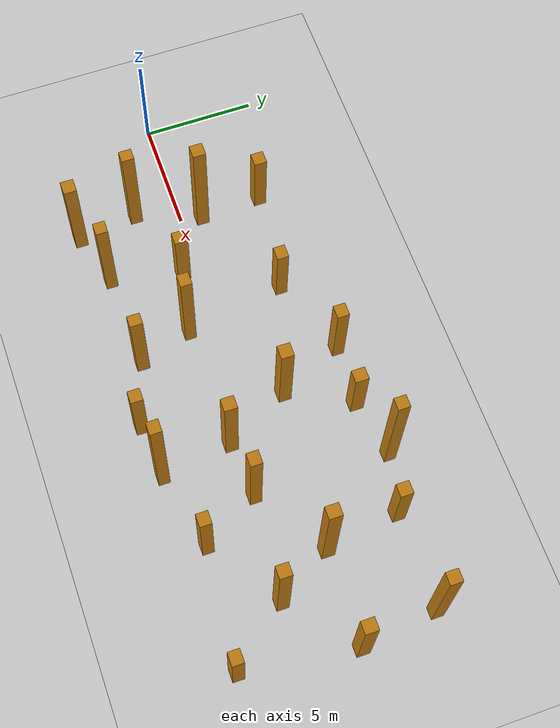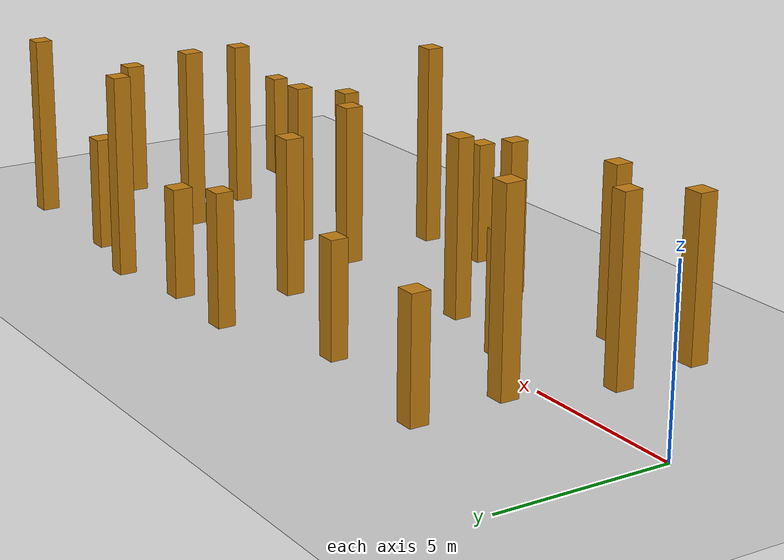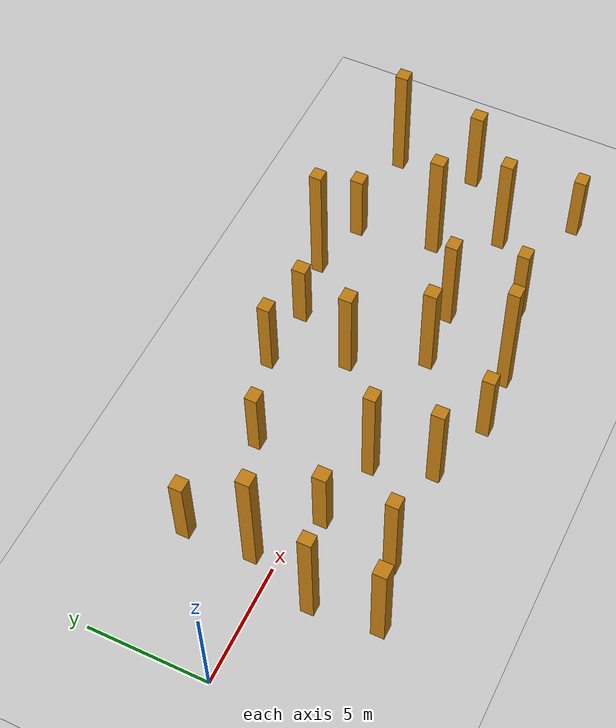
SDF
<sdf version="1.7">
 <world name="default">
  <light name="sun" type="directional">
   <pose>0 0 10 0 -0 0</pose>
   <diffuse>0.8 0.8 0.8 1</diffuse>
   <specular>0.2 0.2 0.2 1</specular>
   <attenuation>
    <range>1000</range>
    <constant>0.9</constant>
    <linear>0.01</linear>
    <quadratic>0.001</quadratic>
   </attenuation>
   <direction>-0.5 0.1 -0.9</direction>
   <spot><inner_angle>0</inner_angle><outer_angle>0</outer_angle><falloff>0</falloff></spot>
  </light>
  <model name="ground_plane">
   <static>1</static>
   <link name="link">
    <collision name="collision">
     <geometry><plane><normal>0 0 1</normal><size>100 100</size></plane></geometry>
     <surface>
      <contact><collide_bitmask>65535</collide_bitmask></contact>
      <friction><ode><mu>100</mu><mu2>50</mu2></ode></friction>
     </surface>
    </collision>
    <visual name="visual">
     <cast_shadows>0</cast_shadows>
     <geometry><plane><normal>0 0 1</normal><size>100 100</size></plane></geometry>
     <material>
      <script><uri>file://media/materials/scripts/gazebo.material</uri><name>Gazebo/Grey</name></script>
     </material>
    </visual>
   </link>
  </model>
  <gravity>0 0 -9.8</gravity>
  <magnetic_field>6e-06 2.3e-05 -4.2e-05</magnetic_field>
  <atmosphere type="adiabatic"/>
  <physics type="ode">
   <max_step_size>0.001</max_step_size>
   <real_time_factor>1</real_time_factor>
   <real_time_update_rate>1000</real_time_update_rate>
  </physics>
  <scene><ambient>0.4 0.4 0.4 1</ambient><background>0.7 0.7 0.7 1</background><shadows>1</shadows></scene>
  <spherical_coordinates>
   <surface_model>EARTH_WGS84</surface_model>
   <latitude_deg>0</latitude_deg>
   <longitude_deg>0</longitude_deg>
   <elevation>0</elevation>
   <heading_deg>0</heading_deg>
  </spherical_coordinates>
  <plugin name="gazebo_octomap" filename="libBuildOctomapPlugin.so"/>
  <model name="model0">
   <link name="link">
    <inertial>
     <mass>1</mass>
     <inertia>
      <ixx>0.166667</ixx>
      <ixy>0</ixy>
      <ixz>0</ixz>
      <iyy>0.166667</iyy>
      <iyz>0</iyz>
      <izz>0.166667</izz>
     </inertia>
    </inertial>
    <visual name="visual">
     <geometry><box><size>0.5777027934313717 0.5519467672636424 3.4554522686206863</size></box></geometry>
     <material>
      <script><name>Gazebo/Grey</name><uri>file://media/materials/scripts/gazebo.material</uri></script>
      <shader type="pixel"><normal_map>__default__</normal_map></shader>
      <ambient>0.757 0.49 0.067 1</ambient>
      <diffuse>0.7 0.7 0.7 1</diffuse>
      <specular>0.01 0.01 0.01 1</specular>
      <emissive>0 0 0 1</emissive>
     </material>
    </visual>
    <collision name="collision">
     <geometry><box><size>0.5777027934313717 0.5519467672636424 3.4554522686206863</size></box></geometry>
     <surface>
      <friction>
       <ode><mu>1</mu><mu2>1</mu2><fdir1>0 0 0</fdir1><slip1>0</slip1><slip2>0</slip2></ode>
       <torsional>
        <coefficient>1</coefficient>
        <patch_radius>0</patch_radius>
        <surface_radius>0</surface_radius>
        <use_patch_radius>1</use_patch_radius>
        <ode><slip>0</slip></ode>
       </torsional>
      </friction>
      <bounce><restitution_coefficient>0</restitution_coefficient><threshold>1e+06</threshold></bounce>
      <contact>
       <collide_without_contact>0</collide_without_contact>
       <collide_without_contact_bitmask>1</collide_without_contact_bitmask>
       <collide_bitmask>1</collide_bitmask>
       <ode>
        <soft_cfm>0</soft_cfm>
        <soft_erp>0.2</soft_erp>
        <kp>1e+13</kp>
        <kd>1</kd>
        <max_vel>0.01</max_vel>
        <min_depth>0</min_depth>
       </ode>
       <bullet>
        <split_impulse>1</split_impulse>
        <split_impulse_penetration_threshold>-0.01</split_impulse_penetration_threshold>
        <soft_cfm>0</soft_cfm>
        <soft_erp>0.2</soft_erp>
        <kp>1e+13</kp>
        <kd>1</kd>
       </bullet>
      </contact>
     </surface>
    </collision>
   </link>
   <static>0</static>
   <pose>5.054676920835966 3.7086308267068357 1.7277261343103432 0.0 0.0 0.0</pose>
  </model>
  <model name="model1">
   <link name="link">
    <inertial>
     <mass>1</mass>
     <inertia>
      <ixx>0.166667</ixx>
      <ixy>0</ixy>
      <ixz>0</ixz>
      <iyy>0.166667</iyy>
      <iyz>0</iyz>
      <izz>0.166667</izz>
     </inertia>
    </inertial>
    <visual name="visual">
     <geometry><box><size>0.5073471061096462 0.5453854103101418 5.256622089450015</size></box></geometry>
     <material>
      <script><name>Gazebo/Grey</name><uri>file://media/materials/scripts/gazebo.material</uri></script>
      <shader type="pixel"><normal_map>__default__</normal_map></shader>
      <ambient>0.757 0.49 0.067 1</ambient>
      <diffuse>0.7 0.7 0.7 1</diffuse>
      <specular>0.01 0.01 0.01 1</specular>
      <emissive>0 0 0 1</emissive>
     </material>
    </visual>
    <collision name="collision">
     <geometry><box><size>0.5073471061096462 0.5453854103101418 5.256622089450015</size></box></geometry>
     <surface>
      <friction>
       <ode><mu>1</mu><mu2>1</mu2><fdir1>0 0 0</fdir1><slip1>0</slip1><slip2>0</slip2></ode>
       <torsional>
        <coefficient>1</coefficient>
        <patch_radius>0</patch_radius>
        <surface_radius>0</surface_radius>
        <use_patch_radius>1</use_patch_radius>
        <ode><slip>0</slip></ode>
       </torsional>
      </friction>
      <bounce><restitution_coefficient>0</restitution_coefficient><threshold>1e+06</threshold></bounce>
      <contact>
       <collide_without_contact>0</collide_without_contact>
       <collide_without_contact_bitmask>1</collide_without_contact_bitmask>
       <collide_bitmask>1</collide_bitmask>
       <ode>
        <soft_cfm>0</soft_cfm>
        <soft_erp>0.2</soft_erp>
        <kp>1e+13</kp>
        <kd>1</kd>
        <max_vel>0.01</max_vel>
        <min_depth>0</min_depth>
       </ode>
       <bullet>
        <split_impulse>1</split_impulse>
        <split_impulse_penetration_threshold>-0.01</split_impulse_penetration_threshold>
        <soft_cfm>0</soft_cfm>
        <soft_erp>0.2</soft_erp>
        <kp>1e+13</kp>
        <kd>1</kd>
       </bullet>
      </contact>
     </surface>
    </collision>
   </link>
   <static>0</static>
   <pose>4.179839821149175 -1.9192540202747832 2.6283110447250073 0.0 0.0 0.0</pose>
  </model>
  <model name="model2">
   <link name="link">
    <inertial>
     <mass>1</mass>
     <inertia>
      <ixx>0.166667</ixx>
      <ixy>0</ixy>
      <ixz>0</ixz>
      <iyy>0.166667</iyy>
      <iyz>0</iyz>
      <izz>0.166667</izz>
     </inertia>
    </inertial>
    <visual name="visual">
     <geometry><box><size>0.5449406386075655 0.5706586713386443 4.141839500690526</size></box></geometry>
     <material>
      <script><name>Gazebo/Grey</name><uri>file://media/materials/scripts/gazebo.material</uri></script>
      <shader type="pixel"><normal_map>__default__</normal_map></shader>
      <ambient>0.757 0.49 0.067 1</ambient>
      <diffuse>0.7 0.7 0.7 1</diffuse>
      <specular>0.01 0.01 0.01 1</specular>
      <emissive>0 0 0 1</emissive>
     </material>
    </visual>
    <collision name="collision">
     <geometry><box><size>0.5449406386075655 0.5706586713386443 4.141839500690526</size></box></geometry>
     <surface>
      <friction>
       <ode><mu>1</mu><mu2>1</mu2><fdir1>0 0 0</fdir1><slip1>0</slip1><slip2>0</slip2></ode>
       <torsional>
        <coefficient>1</coefficient>
        <patch_radius>0</patch_radius>
        <surface_radius>0</surface_radius>
        <use_patch_radius>1</use_patch_radius>
        <ode><slip>0</slip></ode>
       </torsional>
      </friction>
      <bounce><restitution_coefficient>0</restitution_coefficient><threshold>1e+06</threshold></bounce>
      <contact>
       <collide_without_contact>0</collide_without_contact>
       <collide_without_contact_bitmask>1</collide_without_contact_bitmask>
       <collide_bitmask>1</collide_bitmask>
       <ode>
        <soft_cfm>0</soft_cfm>
        <soft_erp>0.2</soft_erp>
        <kp>1e+13</kp>
        <kd>1</kd>
        <max_vel>0.01</max_vel>
        <min_depth>0</min_depth>
       </ode>
       <bullet>
        <split_impulse>1</split_impulse>
        <split_impulse_penetration_threshold>-0.01</split_impulse_penetration_threshold>
        <soft_cfm>0</soft_cfm>
        <soft_erp>0.2</soft_erp>
        <kp>1e+13</kp>
        <kd>1</kd>
       </bullet>
      </contact>
     </surface>
    </collision>
   </link>
   <static>0</static>
   <pose>25.882191102670994 0.7467705310187922 2.070919750345263 0.0 0.0 0.0</pose>
  </model>
  <model name="model3">
   <link name="link">
    <inertial>
     <mass>1</mass>
     <inertia>
      <ixx>0.166667</ixx>
      <ixy>0</ixy>
      <ixz>0</ixz>
      <iyy>0.166667</iyy>
      <iyz>0</iyz>
      <izz>0.166667</izz>
     </inertia>
    </inertial>
    <visual name="visual">
     <geometry><box><size>0.595348045849856 0.5501425203106542 4.567240480705595</size></box></geometry>
     <material>
      <script><name>Gazebo/Grey</name><uri>file://media/materials/scripts/gazebo.material</uri></script>
      <shader type="pixel"><normal_map>__default__</normal_map></shader>
      <ambient>0.757 0.49 0.067 1</ambient>
      <diffuse>0.7 0.7 0.7 1</diffuse>
      <specular>0.01 0.01 0.01 1</specular>
      <emissive>0 0 0 1</emissive>
     </material>
    </visual>
    <collision name="collision">
     <geometry><box><size>0.595348045849856 0.5501425203106542 4.567240480705595</size></box></geometry>
     <surface>
      <friction>
       <ode><mu>1</mu><mu2>1</mu2><fdir1>0 0 0</fdir1><slip1>0</slip1><slip2>0</slip2></ode>
       <torsional>
        <coefficient>1</coefficient>
        <patch_radius>0</patch_radius>
        <surface_radius>0</surface_radius>
        <use_patch_radius>1</use_patch_radius>
        <ode><slip>0</slip></ode>
       </torsional>
      </friction>
      <bounce><restitution_coefficient>0</restitution_coefficient><threshold>1e+06</threshold></bounce>
      <contact>
       <collide_without_contact>0</collide_without_contact>
       <collide_without_contact_bitmask>1</collide_without_contact_bitmask>
       <collide_bitmask>1</collide_bitmask>
       <ode>
        <soft_cfm>0</soft_cfm>
        <soft_erp>0.2</soft_erp>
        <kp>1e+13</kp>
        <kd>1</kd>
        <max_vel>0.01</max_vel>
        <min_depth>0</min_depth>
       </ode>
       <bullet>
        <split_impulse>1</split_impulse>
        <split_impulse_penetration_threshold>-0.01</split_impulse_penetration_threshold>
        <soft_cfm>0</soft_cfm>
        <soft_erp>0.2</soft_erp>
        <kp>1e+13</kp>
        <kd>1</kd>
       </bullet>
      </contact>
     </surface>
    </collision>
   </link>
   <static>0</static>
   <pose>14.593525379456398 1.4967054024668522 2.2836202403527976 0.0 0.0 0.0</pose>
  </model>
  <model name="model4">
   <link name="link">
    <inertial>
     <mass>1</mass>
     <inertia>
      <ixx>0.166667</ixx>
      <ixy>0</ixy>
      <ixz>0</ixz>
      <iyy>0.166667</iyy>
      <iyz>0</iyz>
      <izz>0.166667</izz>
     </inertia>
    </inertial>
    <visual name="visual">
     <geometry><box><size>0.5434534150426487 0.5130036615276314 4.9123347726656</size></box></geometry>
     <material>
      <script><name>Gazebo/Grey</name><uri>file://media/materials/scripts/gazebo.material</uri></script>
      <shader type="pixel"><normal_map>__default__</normal_map></shader>
      <ambient>0.757 0.49 0.067 1</ambient>
      <diffuse>0.7 0.7 0.7 1</diffuse>
      <specular>0.01 0.01 0.01 1</specular>
      <emissive>0 0 0 1</emissive>
     </material>
    </visual>
    <collision name="collision">
     <geometry><box><size>0.5434534150426487 0.5130036615276314 4.9123347726656</size></box></geometry>
     <surface>
      <friction>
       <ode><mu>1</mu><mu2>1</mu2><fdir1>0 0 0</fdir1><slip1>0</slip1><slip2>0</slip2></ode>
       <torsional>
        <coefficient>1</coefficient>
        <patch_radius>0</patch_radius>
        <surface_radius>0</surface_radius>
        <use_patch_radius>1</use_patch_radius>
        <ode><slip>0</slip></ode>
       </torsional>
      </friction>
      <bounce><restitution_coefficient>0</restitution_coefficient><threshold>1e+06</threshold></bounce>
      <contact>
       <collide_without_contact>0</collide_without_contact>
       <collide_without_contact_bitmask>1</collide_without_contact_bitmask>
       <collide_bitmask>1</collide_bitmask>
       <ode>
        <soft_cfm>0</soft_cfm>
        <soft_erp>0.2</soft_erp>
        <kp>1e+13</kp>
        <kd>1</kd>
        <max_vel>0.01</max_vel>
        <min_depth>0</min_depth>
       </ode>
       <bullet>
        <split_impulse>1</split_impulse>
        <split_impulse_penetration_threshold>-0.01</split_impulse_penetration_threshold>
        <soft_cfm>0</soft_cfm>
        <soft_erp>0.2</soft_erp>
        <kp>1e+13</kp>
        <kd>1</kd>
       </bullet>
      </contact>
     </surface>
    </collision>
   </link>
   <static>0</static>
   <pose>6.97847881941449 -3.925780749121893 2.4561673863328 0.0 0.0 0.0</pose>
  </model>
  <model name="model5">
   <link name="link">
    <inertial>
     <mass>1</mass>
     <inertia>
      <ixx>0.166667</ixx>
      <ixy>0</ixy>
      <ixz>0</ixz>
      <iyy>0.166667</iyy>
      <iyz>0</iyz>
      <izz>0.166667</izz>
     </inertia>
    </inertial>
    <visual name="visual">
     <geometry><box><size>0.5610152901299612 0.5067235403730714 3.965051041890803</size></box></geometry>
     <material>
      <script><name>Gazebo/Grey</name><uri>file://media/materials/scripts/gazebo.material</uri></script>
      <shader type="pixel"><normal_map>__default__</normal_map></shader>
      <ambient>0.757 0.49 0.067 1</ambient>
      <diffuse>0.7 0.7 0.7 1</diffuse>
      <specular>0.01 0.01 0.01 1</specular>
      <emissive>0 0 0 1</emissive>
     </material>
    </visual>
    <collision name="collision">
     <geometry><box><size>0.5610152901299612 0.5067235403730714 3.965051041890803</size></box></geometry>
     <surface>
      <friction>
       <ode><mu>1</mu><mu2>1</mu2><fdir1>0 0 0</fdir1><slip1>0</slip1><slip2>0</slip2></ode>
       <torsional>
        <coefficient>1</coefficient>
        <patch_radius>0</patch_radius>
        <surface_radius>0</surface_radius>
        <use_patch_radius>1</use_patch_radius>
        <ode><slip>0</slip></ode>
       </torsional>
      </friction>
      <bounce><restitution_coefficient>0</restitution_coefficient><threshold>1e+06</threshold></bounce>
      <contact>
       <collide_without_contact>0</collide_without_contact>
       <collide_without_contact_bitmask>1</collide_without_contact_bitmask>
       <collide_bitmask>1</collide_bitmask>
       <ode>
        <soft_cfm>0</soft_cfm>
        <soft_erp>0.2</soft_erp>
        <kp>1e+13</kp>
        <kd>1</kd>
        <max_vel>0.01</max_vel>
        <min_depth>0</min_depth>
       </ode>
       <bullet>
        <split_impulse>1</split_impulse>
        <split_impulse_penetration_threshold>-0.01</split_impulse_penetration_threshold>
        <soft_cfm>0</soft_cfm>
        <soft_erp>0.2</soft_erp>
        <kp>1e+13</kp>
        <kd>1</kd>
       </bullet>
      </contact>
     </surface>
    </collision>
   </link>
   <static>0</static>
   <pose>19.94939341596352 -3.738618891570651 1.9825255209454016 0.0 0.0 0.0</pose>
  </model>
  <model name="model6">
   <link name="link">
    <inertial>
     <mass>1</mass>
     <inertia>
      <ixx>0.166667</ixx>
      <ixy>0</ixy>
      <ixz>0</ixz>
      <iyy>0.166667</iyy>
      <iyz>0</iyz>
      <izz>0.166667</izz>
     </inertia>
    </inertial>
    <visual name="visual">
     <geometry><box><size>0.5327959383443228 0.5691119967350036 5.450018998695472</size></box></geometry>
     <material>
      <script><name>Gazebo/Grey</name><uri>file://media/materials/scripts/gazebo.material</uri></script>
      <shader type="pixel"><normal_map>__default__</normal_map></shader>
      <ambient>0.757 0.49 0.067 1</ambient>
      <diffuse>0.7 0.7 0.7 1</diffuse>
      <specular>0.01 0.01 0.01 1</specular>
      <emissive>0 0 0 1</emissive>
     </material>
    </visual>
    <collision name="collision">
     <geometry><box><size>0.5327959383443228 0.5691119967350036 5.450018998695472</size></box></geometry>
     <surface>
      <friction>
       <ode><mu>1</mu><mu2>1</mu2><fdir1>0 0 0</fdir1><slip1>0</slip1><slip2>0</slip2></ode>
       <torsional>
        <coefficient>1</coefficient>
        <patch_radius>0</patch_radius>
        <surface_radius>0</surface_radius>
        <use_patch_radius>1</use_patch_radius>
        <ode><slip>0</slip></ode>
       </torsional>
      </friction>
      <bounce><restitution_coefficient>0</restitution_coefficient><threshold>1e+06</threshold></bounce>
      <contact>
       <collide_without_contact>0</collide_without_contact>
       <collide_without_contact_bitmask>1</collide_without_contact_bitmask>
       <collide_bitmask>1</collide_bitmask>
       <ode>
        <soft_cfm>0</soft_cfm>
        <soft_erp>0.2</soft_erp>
        <kp>1e+13</kp>
        <kd>1</kd>
        <max_vel>0.01</max_vel>
        <min_depth>0</min_depth>
       </ode>
       <bullet>
        <split_impulse>1</split_impulse>
        <split_impulse_penetration_threshold>-0.01</split_impulse_penetration_threshold>
        <soft_cfm>0</soft_cfm>
        <soft_erp>0.2</soft_erp>
        <kp>1e+13</kp>
        <kd>1</kd>
       </bullet>
      </contact>
     </surface>
    </collision>
   </link>
   <static>0</static>
   <pose>21.691666708082806 0.8250900164712878 2.725009499347736 0.0 0.0 0.0</pose>
  </model>
  <model name="model7">
   <link name="link">
    <inertial>
     <mass>1</mass>
     <inertia>
      <ixx>0.166667</ixx>
      <ixy>0</ixy>
      <ixz>0</ixz>
      <iyy>0.166667</iyy>
      <iyz>0</iyz>
      <izz>0.166667</izz>
     </inertia>
    </inertial>
    <visual name="visual">
     <geometry><box><size>0.5726523198767449 0.5189342059258331 3.827504244428258</size></box></geometry>
     <material>
      <script><name>Gazebo/Grey</name><uri>file://media/materials/scripts/gazebo.material</uri></script>
      <shader type="pixel"><normal_map>__default__</normal_map></shader>
      <ambient>0.757 0.49 0.067 1</ambient>
      <diffuse>0.7 0.7 0.7 1</diffuse>
      <specular>0.01 0.01 0.01 1</specular>
      <emissive>0 0 0 1</emissive>
     </material>
    </visual>
    <collision name="collision">
     <geometry><box><size>0.5726523198767449 0.5189342059258331 3.827504244428258</size></box></geometry>
     <surface>
      <friction>
       <ode><mu>1</mu><mu2>1</mu2><fdir1>0 0 0</fdir1><slip1>0</slip1><slip2>0</slip2></ode>
       <torsional>
        <coefficient>1</coefficient>
        <patch_radius>0</patch_radius>
        <surface_radius>0</surface_radius>
        <use_patch_radius>1</use_patch_radius>
        <ode><slip>0</slip></ode>
       </torsional>
      </friction>
      <bounce><restitution_coefficient>0</restitution_coefficient><threshold>1e+06</threshold></bounce>
      <contact>
       <collide_without_contact>0</collide_without_contact>
       <collide_without_contact_bitmask>1</collide_without_contact_bitmask>
       <collide_bitmask>1</collide_bitmask>
       <ode>
        <soft_cfm>0</soft_cfm>
        <soft_erp>0.2</soft_erp>
        <kp>1e+13</kp>
        <kd>1</kd>
        <max_vel>0.01</max_vel>
        <min_depth>0</min_depth>
       </ode>
       <bullet>
        <split_impulse>1</split_impulse>
        <split_impulse_penetration_threshold>-0.01</split_impulse_penetration_threshold>
        <soft_cfm>0</soft_cfm>
        <soft_erp>0.2</soft_erp>
        <kp>1e+13</kp>
        <kd>1</kd>
       </bullet>
      </contact>
     </surface>
    </collision>
   </link>
   <static>0</static>
   <pose>13.322934380557165 4.410558999336448 1.913752122214129 0.0 0.0 0.0</pose>
  </model>
  <model name="model8">
   <link name="link">
    <inertial>
     <mass>1</mass>
     <inertia>
      <ixx>0.166667</ixx>
      <ixy>0</ixy>
      <ixz>0</ixz>
      <iyy>0.166667</iyy>
      <iyz>0</iyz>
      <izz>0.166667</izz>
     </inertia>
    </inertial>
    <visual name="visual">
     <geometry><box><size>0.5303372544135336 0.5098194195694509 5.856949201654407</size></box></geometry>
     <material>
      <script><name>Gazebo/Grey</name><uri>file://media/materials/scripts/gazebo.material</uri></script>
      <shader type="pixel"><normal_map>__default__</normal_map></shader>
      <ambient>0.757 0.49 0.067 1</ambient>
      <diffuse>0.7 0.7 0.7 1</diffuse>
      <specular>0.01 0.01 0.01 1</specular>
      <emissive>0 0 0 1</emissive>
     </material>
    </visual>
    <collision name="collision">
     <geometry><box><size>0.5303372544135336 0.5098194195694509 5.856949201654407</size></box></geometry>
     <surface>
      <friction>
       <ode><mu>1</mu><mu2>1</mu2><fdir1>0 0 0</fdir1><slip1>0</slip1><slip2>0</slip2></ode>
       <torsional>
        <coefficient>1</coefficient>
        <patch_radius>0</patch_radius>
        <surface_radius>0</surface_radius>
        <use_patch_radius>1</use_patch_radius>
        <ode><slip>0</slip></ode>
       </torsional>
      </friction>
      <bounce><restitution_coefficient>0</restitution_coefficient><threshold>1e+06</threshold></bounce>
      <contact>
       <collide_without_contact>0</collide_without_contact>
       <collide_without_contact_bitmask>1</collide_without_contact_bitmask>
       <collide_bitmask>1</collide_bitmask>
       <ode>
        <soft_cfm>0</soft_cfm>
        <soft_erp>0.2</soft_erp>
        <kp>1e+13</kp>
        <kd>1</kd>
        <max_vel>0.01</max_vel>
        <min_depth>0</min_depth>
       </ode>
       <bullet>
        <split_impulse>1</split_impulse>
        <split_impulse_penetration_threshold>-0.01</split_impulse_penetration_threshold>
        <soft_cfm>0</soft_cfm>
        <soft_erp>0.2</soft_erp>
        <kp>1e+13</kp>
        <kd>1</kd>
       </bullet>
      </contact>
     </surface>
    </collision>
   </link>
   <static>0</static>
   <pose>18.621491020865278 4.74123038974375 2.9284746008272036 0.0 0.0 0.0</pose>
  </model>
  <model name="model9">
   <link name="link">
    <inertial>
     <mass>1</mass>
     <inertia>
      <ixx>0.166667</ixx>
      <ixy>0</ixy>
      <ixz>0</ixz>
      <iyy>0.166667</iyy>
      <iyz>0</iyz>
      <izz>0.166667</izz>
     </inertia>
    </inertial>
    <visual name="visual">
     <geometry><box><size>0.5014477787780277 0.5511958853265293 4.486181960668688</size></box></geometry>
     <material>
      <script><name>Gazebo/Grey</name><uri>file://media/materials/scripts/gazebo.material</uri></script>
      <shader type="pixel"><normal_map>__default__</normal_map></shader>
      <ambient>0.757 0.49 0.067 1</ambient>
      <diffuse>0.7 0.7 0.7 1</diffuse>
      <specular>0.01 0.01 0.01 1</specular>
      <emissive>0 0 0 1</emissive>
     </material>
    </visual>
    <collision name="collision">
     <geometry><box><size>0.5014477787780277 0.5511958853265293 4.486181960668688</size></box></geometry>
     <surface>
      <friction>
       <ode><mu>1</mu><mu2>1</mu2><fdir1>0 0 0</fdir1><slip1>0</slip1><slip2>0</slip2></ode>
       <torsional>
        <coefficient>1</coefficient>
        <patch_radius>0</patch_radius>
        <surface_radius>0</surface_radius>
        <use_patch_radius>1</use_patch_radius>
        <ode><slip>0</slip></ode>
       </torsional>
      </friction>
      <bounce><restitution_coefficient>0</restitution_coefficient><threshold>1e+06</threshold></bounce>
      <contact>
       <collide_without_contact>0</collide_without_contact>
       <collide_without_contact_bitmask>1</collide_without_contact_bitmask>
       <collide_bitmask>1</collide_bitmask>
       <ode>
        <soft_cfm>0</soft_cfm>
        <soft_erp>0.2</soft_erp>
        <kp>1e+13</kp>
        <kd>1</kd>
        <max_vel>0.01</max_vel>
        <min_depth>0</min_depth>
       </ode>
       <bullet>
        <split_impulse>1</split_impulse>
        <split_impulse_penetration_threshold>-0.01</split_impulse_penetration_threshold>
        <soft_cfm>0</soft_cfm>
        <soft_erp>0.2</soft_erp>
        <kp>1e+13</kp>
        <kd>1</kd>
       </bullet>
      </contact>
     </surface>
    </collision>
   </link>
   <static>0</static>
   <pose>11.281341930449749 -3.791336489928229 2.243090980334344 0.0 0.0 0.0</pose>
  </model>
  <model name="model10">
   <link name="link">
    <inertial>
     <mass>1</mass>
     <inertia>
      <ixx>0.166667</ixx>
      <ixy>0</ixy>
      <ixz>0</ixz>
      <iyy>0.166667</iyy>
      <iyz>0</iyz>
      <izz>0.166667</izz>
     </inertia>
    </inertial>
    <visual name="visual">
     <geometry><box><size>0.592236582608738 0.5101875666875312 3.3267414087127265</size></box></geometry>
     <material>
      <script><name>Gazebo/Grey</name><uri>file://media/materials/scripts/gazebo.material</uri></script>
      <shader type="pixel"><normal_map>__default__</normal_map></shader>
      <ambient>0.757 0.49 0.067 1</ambient>
      <diffuse>0.7 0.7 0.7 1</diffuse>
      <specular>0.01 0.01 0.01 1</specular>
      <emissive>0 0 0 1</emissive>
     </material>
    </visual>
    <collision name="collision">
     <geometry><box><size>0.592236582608738 0.5101875666875312 3.3267414087127265</size></box></geometry>
     <surface>
      <friction>
       <ode><mu>1</mu><mu2>1</mu2><fdir1>0 0 0</fdir1><slip1>0</slip1><slip2>0</slip2></ode>
       <torsional>
        <coefficient>1</coefficient>
        <patch_radius>0</patch_radius>
        <surface_radius>0</surface_radius>
        <use_patch_radius>1</use_patch_radius>
        <ode><slip>0</slip></ode>
       </torsional>
      </friction>
      <bounce><restitution_coefficient>0</restitution_coefficient><threshold>1e+06</threshold></bounce>
      <contact>
       <collide_without_contact>0</collide_without_contact>
       <collide_without_contact_bitmask>1</collide_without_contact_bitmask>
       <collide_bitmask>1</collide_bitmask>
       <ode>
        <soft_cfm>0</soft_cfm>
        <soft_erp>0.2</soft_erp>
        <kp>1e+13</kp>
        <kd>1</kd>
        <max_vel>0.01</max_vel>
        <min_depth>0</min_depth>
       </ode>
       <bullet>
        <split_impulse>1</split_impulse>
        <split_impulse_penetration_threshold>-0.01</split_impulse_penetration_threshold>
        <soft_cfm>0</soft_cfm>
        <soft_erp>0.2</soft_erp>
        <kp>1e+13</kp>
        <kd>1</kd>
       </bullet>
      </contact>
     </surface>
    </collision>
   </link>
   <static>0</static>
   <pose>9.696452314677973 3.086230046374471 1.6633707043563632 0.0 0.0 0.0</pose>
  </model>
  <model name="model11">
   <link name="link">
    <inertial>
     <mass>1</mass>
     <inertia>
      <ixx>0.166667</ixx>
      <ixy>0</ixy>
      <ixz>0</ixz>
      <iyy>0.166667</iyy>
      <iyz>0</iyz>
      <izz>0.166667</izz>
     </inertia>
    </inertial>
    <visual name="visual">
     <geometry><box><size>0.5739358527195448 0.5593041185529457 5.67670003649761</size></box></geometry>
     <material>
      <script><name>Gazebo/Grey</name><uri>file://media/materials/scripts/gazebo.material</uri></script>
      <shader type="pixel"><normal_map>__default__</normal_map></shader>
      <ambient>0.757 0.49 0.067 1</ambient>
      <diffuse>0.7 0.7 0.7 1</diffuse>
      <specular>0.01 0.01 0.01 1</specular>
      <emissive>0 0 0 1</emissive>
     </material>
    </visual>
    <collision name="collision">
     <geometry><box><size>0.5739358527195448 0.5593041185529457 5.67670003649761</size></box></geometry>
     <surface>
      <friction>
       <ode><mu>1</mu><mu2>1</mu2><fdir1>0 0 0</fdir1><slip1>0</slip1><slip2>0</slip2></ode>
       <torsional>
        <coefficient>1</coefficient>
        <patch_radius>0</patch_radius>
        <surface_radius>0</surface_radius>
        <use_patch_radius>1</use_patch_radius>
        <ode><slip>0</slip></ode>
       </torsional>
      </friction>
      <bounce><restitution_coefficient>0</restitution_coefficient><threshold>1e+06</threshold></bounce>
      <contact>
       <collide_without_contact>0</collide_without_contact>
       <collide_without_contact_bitmask>1</collide_without_contact_bitmask>
       <collide_bitmask>1</collide_bitmask>
       <ode>
        <soft_cfm>0</soft_cfm>
        <soft_erp>0.2</soft_erp>
        <kp>1e+13</kp>
        <kd>1</kd>
        <max_vel>0.01</max_vel>
        <min_depth>0</min_depth>
       </ode>
       <bullet>
        <split_impulse>1</split_impulse>
        <split_impulse_penetration_threshold>-0.01</split_impulse_penetration_threshold>
        <soft_cfm>0</soft_cfm>
        <soft_erp>0.2</soft_erp>
        <kp>1e+13</kp>
        <kd>1</kd>
       </bullet>
      </contact>
     </surface>
    </collision>
   </link>
   <static>0</static>
   <pose>5.183063341521258 0.9269025249787823 2.838350018248805 0.0 0.0 0.0</pose>
  </model>
  <model name="model12">
   <link name="link">
    <inertial>
     <mass>1</mass>
     <inertia>
      <ixx>0.166667</ixx>
      <ixy>0</ixy>
      <ixz>0</ixz>
      <iyy>0.166667</iyy>
      <iyz>0</iyz>
      <izz>0.166667</izz>
     </inertia>
    </inertial>
    <visual name="visual">
     <geometry><box><size>0.558062518724512 0.5549689743950769 4.7159858508732775</size></box></geometry>
     <material>
      <script><name>Gazebo/Grey</name><uri>file://media/materials/scripts/gazebo.material</uri></script>
      <shader type="pixel"><normal_map>__default__</normal_map></shader>
      <ambient>0.757 0.49 0.067 1</ambient>
      <diffuse>0.7 0.7 0.7 1</diffuse>
      <specular>0.01 0.01 0.01 1</specular>
      <emissive>0 0 0 1</emissive>
     </material>
    </visual>
    <collision name="collision">
     <geometry><box><size>0.558062518724512 0.5549689743950769 4.7159858508732775</size></box></geometry>
     <surface>
      <friction>
       <ode><mu>1</mu><mu2>1</mu2><fdir1>0 0 0</fdir1><slip1>0</slip1><slip2>0</slip2></ode>
       <torsional>
        <coefficient>1</coefficient>
        <patch_radius>0</patch_radius>
        <surface_radius>0</surface_radius>
        <use_patch_radius>1</use_patch_radius>
        <ode><slip>0</slip></ode>
       </torsional>
      </friction>
      <bounce><restitution_coefficient>0</restitution_coefficient><threshold>1e+06</threshold></bounce>
      <contact>
       <collide_without_contact>0</collide_without_contact>
       <collide_without_contact_bitmask>1</collide_without_contact_bitmask>
       <collide_bitmask>1</collide_bitmask>
       <ode>
        <soft_cfm>0</soft_cfm>
        <soft_erp>0.2</soft_erp>
        <kp>1e+13</kp>
        <kd>1</kd>
        <max_vel>0.01</max_vel>
        <min_depth>0</min_depth>
       </ode>
       <bullet>
        <split_impulse>1</split_impulse>
        <split_impulse_penetration_threshold>-0.01</split_impulse_penetration_threshold>
        <soft_cfm>0</soft_cfm>
        <soft_erp>0.2</soft_erp>
        <kp>1e+13</kp>
        <kd>1</kd>
       </bullet>
      </contact>
     </surface>
    </collision>
   </link>
   <static>0</static>
   <pose>16.056160560108676 -1.3877843349571806 2.3579929254366387 0.0 0.0 0.0</pose>
  </model>
  <model name="model13">
   <link name="link">
    <inertial>
     <mass>1</mass>
     <inertia>
      <ixx>0.166667</ixx>
      <ixy>0</ixy>
      <ixz>0</ixz>
      <iyy>0.166667</iyy>
      <iyz>0</iyz>
      <izz>0.166667</izz>
     </inertia>
    </inertial>
    <visual name="visual">
     <geometry><box><size>0.5265892789405119 0.5303958132108616 5.467037253113821</size></box></geometry>
     <material>
      <script><name>Gazebo/Grey</name><uri>file://media/materials/scripts/gazebo.material</uri></script>
      <shader type="pixel"><normal_map>__default__</normal_map></shader>
      <ambient>0.757 0.49 0.067 1</ambient>
      <diffuse>0.7 0.7 0.7 1</diffuse>
      <specular>0.01 0.01 0.01 1</specular>
      <emissive>0 0 0 1</emissive>
     </material>
    </visual>
    <collision name="collision">
     <geometry><box><size>0.5265892789405119 0.5303958132108616 5.467037253113821</size></box></geometry>
     <surface>
      <friction>
       <ode><mu>1</mu><mu2>1</mu2><fdir1>0 0 0</fdir1><slip1>0</slip1><slip2>0</slip2></ode>
       <torsional>
        <coefficient>1</coefficient>
        <patch_radius>0</patch_radius>
        <surface_radius>0</surface_radius>
        <use_patch_radius>1</use_patch_radius>
        <ode><slip>0</slip></ode>
       </torsional>
      </friction>
      <bounce><restitution_coefficient>0</restitution_coefficient><threshold>1e+06</threshold></bounce>
      <contact>
       <collide_without_contact>0</collide_without_contact>
       <collide_without_contact_bitmask>1</collide_without_contact_bitmask>
       <collide_bitmask>1</collide_bitmask>
       <ode>
        <soft_cfm>0</soft_cfm>
        <soft_erp>0.2</soft_erp>
        <kp>1e+13</kp>
        <kd>1</kd>
        <max_vel>0.01</max_vel>
        <min_depth>0</min_depth>
       </ode>
       <bullet>
        <split_impulse>1</split_impulse>
        <split_impulse_penetration_threshold>-0.01</split_impulse_penetration_threshold>
        <soft_cfm>0</soft_cfm>
        <soft_erp>0.2</soft_erp>
        <kp>1e+13</kp>
        <kd>1</kd>
       </bullet>
      </contact>
     </surface>
    </collision>
   </link>
   <static>0</static>
   <pose>25.461217657561136 4.084688069917817 2.7335186265569105 0.0 0.0 0.0</pose>
  </model>
  <model name="model14">
   <link name="link">
    <inertial>
     <mass>1</mass>
     <inertia>
      <ixx>0.166667</ixx>
      <ixy>0</ixy>
      <ixz>0</ixz>
      <iyy>0.166667</iyy>
      <iyz>0</iyz>
      <izz>0.166667</izz>
     </inertia>
    </inertial>
    <visual name="visual">
     <geometry><box><size>0.5568038304767157 0.5531864051994666 3.341331904509333</size></box></geometry>
     <material>
      <script><name>Gazebo/Grey</name><uri>file://media/materials/scripts/gazebo.material</uri></script>
      <shader type="pixel"><normal_map>__default__</normal_map></shader>
      <ambient>0.757 0.49 0.067 1</ambient>
      <diffuse>0.7 0.7 0.7 1</diffuse>
      <specular>0.01 0.01 0.01 1</specular>
      <emissive>0 0 0 1</emissive>
     </material>
    </visual>
    <collision name="collision">
     <geometry><box><size>0.5568038304767157 0.5531864051994666 3.341331904509333</size></box></geometry>
     <surface>
      <friction>
       <ode><mu>1</mu><mu2>1</mu2><fdir1>0 0 0</fdir1><slip1>0</slip1><slip2>0</slip2></ode>
       <torsional>
        <coefficient>1</coefficient>
        <patch_radius>0</patch_radius>
        <surface_radius>0</surface_radius>
        <use_patch_radius>1</use_patch_radius>
        <ode><slip>0</slip></ode>
       </torsional>
      </friction>
      <bounce><restitution_coefficient>0</restitution_coefficient><threshold>1e+06</threshold></bounce>
      <contact>
       <collide_without_contact>0</collide_without_contact>
       <collide_without_contact_bitmask>1</collide_without_contact_bitmask>
       <collide_bitmask>1</collide_bitmask>
       <ode>
        <soft_cfm>0</soft_cfm>
        <soft_erp>0.2</soft_erp>
        <kp>1e+13</kp>
        <kd>1</kd>
        <max_vel>0.01</max_vel>
        <min_depth>0</min_depth>
       </ode>
       <bullet>
        <split_impulse>1</split_impulse>
        <split_impulse_penetration_threshold>-0.01</split_impulse_penetration_threshold>
        <soft_cfm>0</soft_cfm>
        <soft_erp>0.2</soft_erp>
        <kp>1e+13</kp>
        <kd>1</kd>
       </bullet>
      </contact>
     </surface>
    </collision>
   </link>
   <static>0</static>
   <pose>21.177433072085627 4.120783782351431 1.6706659522546665 0.0 0.0 0.0</pose>
  </model>
  <model name="model15">
   <link name="link">
    <inertial>
     <mass>1</mass>
     <inertia>
      <ixx>0.166667</ixx>
      <ixy>0</ixy>
      <ixz>0</ixz>
      <iyy>0.166667</iyy>
      <iyz>0</iyz>
      <izz>0.166667</izz>
     </inertia>
    </inertial>
    <visual name="visual">
     <geometry><box><size>0.5390655281449394 0.5294124468678564 5.0483878523722705</size></box></geometry>
     <material>
      <script><name>Gazebo/Grey</name><uri>file://media/materials/scripts/gazebo.material</uri></script>
      <shader type="pixel"><normal_map>__default__</normal_map></shader>
      <ambient>0.757 0.49 0.067 1</ambient>
      <diffuse>0.7 0.7 0.7 1</diffuse>
      <specular>0.01 0.01 0.01 1</specular>
      <emissive>0 0 0 1</emissive>
     </material>
    </visual>
    <collision name="collision">
     <geometry><box><size>0.5390655281449394 0.5294124468678564 5.0483878523722705</size></box></geometry>
     <surface>
      <friction>
       <ode><mu>1</mu><mu2>1</mu2><fdir1>0 0 0</fdir1><slip1>0</slip1><slip2>0</slip2></ode>
       <torsional>
        <coefficient>1</coefficient>
        <patch_radius>0</patch_radius>
        <surface_radius>0</surface_radius>
        <use_patch_radius>1</use_patch_radius>
        <ode><slip>0</slip></ode>
       </torsional>
      </friction>
      <bounce><restitution_coefficient>0</restitution_coefficient><threshold>1e+06</threshold></bounce>
      <contact>
       <collide_without_contact>0</collide_without_contact>
       <collide_without_contact_bitmask>1</collide_without_contact_bitmask>
       <collide_bitmask>1</collide_bitmask>
       <ode>
        <soft_cfm>0</soft_cfm>
        <soft_erp>0.2</soft_erp>
        <kp>1e+13</kp>
        <kd>1</kd>
        <max_vel>0.01</max_vel>
        <min_depth>0</min_depth>
       </ode>
       <bullet>
        <split_impulse>1</split_impulse>
        <split_impulse_penetration_threshold>-0.01</split_impulse_penetration_threshold>
        <soft_cfm>0</soft_cfm>
        <soft_erp>0.2</soft_erp>
        <kp>1e+13</kp>
        <kd>1</kd>
       </bullet>
      </contact>
     </surface>
    </collision>
   </link>
   <static>0</static>
   <pose>23.117571439536086 -1.6423795868750868 2.5241939261861353 0.0 0.0 0.0</pose>
  </model>
  <model name="model16">
   <link name="link">
    <inertial>
     <mass>1</mass>
     <inertia>
      <ixx>0.166667</ixx>
      <ixy>0</ixy>
      <ixz>0</ixz>
      <iyy>0.166667</iyy>
      <iyz>0</iyz>
      <izz>0.166667</izz>
     </inertia>
    </inertial>
    <visual name="visual">
     <geometry><box><size>0.5512758072632613 0.5006689878473105 5.97409911836237</size></box></geometry>
     <material>
      <script><name>Gazebo/Grey</name><uri>file://media/materials/scripts/gazebo.material</uri></script>
      <shader type="pixel"><normal_map>__default__</normal_map></shader>
      <ambient>0.757 0.49 0.067 1</ambient>
      <diffuse>0.7 0.7 0.7 1</diffuse>
      <specular>0.01 0.01 0.01 1</specular>
      <emissive>0 0 0 1</emissive>
     </material>
    </visual>
    <collision name="collision">
     <geometry><box><size>0.5512758072632613 0.5006689878473105 5.97409911836237</size></box></geometry>
     <surface>
      <friction>
       <ode><mu>1</mu><mu2>1</mu2><fdir1>0 0 0</fdir1><slip1>0</slip1><slip2>0</slip2></ode>
       <torsional>
        <coefficient>1</coefficient>
        <patch_radius>0</patch_radius>
        <surface_radius>0</surface_radius>
        <use_patch_radius>1</use_patch_radius>
        <ode><slip>0</slip></ode>
       </torsional>
      </friction>
      <bounce><restitution_coefficient>0</restitution_coefficient><threshold>1e+06</threshold></bounce>
      <contact>
       <collide_without_contact>0</collide_without_contact>
       <collide_without_contact_bitmask>1</collide_without_contact_bitmask>
       <collide_bitmask>1</collide_bitmask>
       <ode>
        <soft_cfm>0</soft_cfm>
        <soft_erp>0.2</soft_erp>
        <kp>1e+13</kp>
        <kd>1</kd>
        <max_vel>0.01</max_vel>
        <min_depth>0</min_depth>
       </ode>
       <bullet>
        <split_impulse>1</split_impulse>
        <split_impulse_penetration_threshold>-0.01</split_impulse_penetration_threshold>
        <soft_cfm>0</soft_cfm>
        <soft_erp>0.2</soft_erp>
        <kp>1e+13</kp>
        <kd>1</kd>
       </bullet>
      </contact>
     </surface>
    </collision>
   </link>
   <static>0</static>
   <pose>16.522399645591637 -4.524272353859585 2.987049559181185 0.0 0.0 0.0</pose>
  </model>
  <model name="model17">
   <link name="link">
    <inertial>
     <mass>1</mass>
     <inertia>
      <ixx>0.166667</ixx>
      <ixy>0</ixy>
      <ixz>0</ixz>
      <iyy>0.166667</iyy>
      <iyz>0</iyz>
      <izz>0.166667</izz>
     </inertia>
    </inertial>
    <visual name="visual">
     <geometry><box><size>0.5686189026992805 0.5005309914599895 5.145410895525088</size></box></geometry>
     <material>
      <script><name>Gazebo/Grey</name><uri>file://media/materials/scripts/gazebo.material</uri></script>
      <shader type="pixel"><normal_map>__default__</normal_map></shader>
      <ambient>0.757 0.49 0.067 1</ambient>
      <diffuse>0.7 0.7 0.7 1</diffuse>
      <specular>0.01 0.01 0.01 1</specular>
      <emissive>0 0 0 1</emissive>
     </material>
    </visual>
    <collision name="collision">
     <geometry><box><size>0.5686189026992805 0.5005309914599895 5.145410895525088</size></box></geometry>
     <surface>
      <friction>
       <ode><mu>1</mu><mu2>1</mu2><fdir1>0 0 0</fdir1><slip1>0</slip1><slip2>0</slip2></ode>
       <torsional>
        <coefficient>1</coefficient>
        <patch_radius>0</patch_radius>
        <surface_radius>0</surface_radius>
        <use_patch_radius>1</use_patch_radius>
        <ode><slip>0</slip></ode>
       </torsional>
      </friction>
      <bounce><restitution_coefficient>0</restitution_coefficient><threshold>1e+06</threshold></bounce>
      <contact>
       <collide_without_contact>0</collide_without_contact>
       <collide_without_contact_bitmask>1</collide_without_contact_bitmask>
       <collide_bitmask>1</collide_bitmask>
       <ode>
        <soft_cfm>0</soft_cfm>
        <soft_erp>0.2</soft_erp>
        <kp>1e+13</kp>
        <kd>1</kd>
        <max_vel>0.01</max_vel>
        <min_depth>0</min_depth>
       </ode>
       <bullet>
        <split_impulse>1</split_impulse>
        <split_impulse_penetration_threshold>-0.01</split_impulse_penetration_threshold>
        <soft_cfm>0</soft_cfm>
        <soft_erp>0.2</soft_erp>
        <kp>1e+13</kp>
        <kd>1</kd>
       </bullet>
      </contact>
     </surface>
    </collision>
   </link>
   <static>0</static>
   <pose>10.517288944511808 -1.4062154218758796 2.572705447762544 0.0 0.0 0.0</pose>
  </model>
  <model name="model18">
   <link name="link">
    <inertial>
     <mass>1</mass>
     <inertia>
      <ixx>0.166667</ixx>
      <ixy>0</ixy>
      <ixz>0</ixz>
      <iyy>0.166667</iyy>
      <iyz>0</iyz>
      <izz>0.166667</izz>
     </inertia>
    </inertial>
    <visual name="visual">
     <geometry><box><size>0.5845995609900363 0.5044128106206717 3.23225545044565</size></box></geometry>
     <material>
      <script><name>Gazebo/Grey</name><uri>file://media/materials/scripts/gazebo.material</uri></script>
      <shader type="pixel"><normal_map>__default__</normal_map></shader>
      <ambient>0.757 0.49 0.067 1</ambient>
      <diffuse>0.7 0.7 0.7 1</diffuse>
      <specular>0.01 0.01 0.01 1</specular>
      <emissive>0 0 0 1</emissive>
     </material>
    </visual>
    <collision name="collision">
     <geometry><box><size>0.5845995609900363 0.5044128106206717 3.23225545044565</size></box></geometry>
     <surface>
      <friction>
       <ode><mu>1</mu><mu2>1</mu2><fdir1>0 0 0</fdir1><slip1>0</slip1><slip2>0</slip2></ode>
       <torsional>
        <coefficient>1</coefficient>
        <patch_radius>0</patch_radius>
        <surface_radius>0</surface_radius>
        <use_patch_radius>1</use_patch_radius>
        <ode><slip>0</slip></ode>
       </torsional>
      </friction>
      <bounce><restitution_coefficient>0</restitution_coefficient><threshold>1e+06</threshold></bounce>
      <contact>
       <collide_without_contact>0</collide_without_contact>
       <collide_without_contact_bitmask>1</collide_without_contact_bitmask>
       <collide_bitmask>1</collide_bitmask>
       <ode>
        <soft_cfm>0</soft_cfm>
        <soft_erp>0.2</soft_erp>
        <kp>1e+13</kp>
        <kd>1</kd>
        <max_vel>0.01</max_vel>
        <min_depth>0</min_depth>
       </ode>
       <bullet>
        <split_impulse>1</split_impulse>
        <split_impulse_penetration_threshold>-0.01</split_impulse_penetration_threshold>
        <soft_cfm>0</soft_cfm>
        <soft_erp>0.2</soft_erp>
        <kp>1e+13</kp>
        <kd>1</kd>
       </bullet>
      </contact>
     </surface>
    </collision>
   </link>
   <static>0</static>
   <pose>25.19408774633408 -4.242431146890743 1.616127725222825 0.0 0.0 0.0</pose>
  </model>
  <model name="model19">
   <link name="link">
    <inertial>
     <mass>1</mass>
     <inertia>
      <ixx>0.166667</ixx>
      <ixy>0</ixy>
      <ixz>0</ixz>
      <iyy>0.166667</iyy>
      <iyz>0</iyz>
      <izz>0.166667</izz>
     </inertia>
    </inertial>
    <visual name="visual">
     <geometry><box><size>0.5450935984288225 0.531776631425286 3.586612044131096</size></box></geometry>
     <material>
      <script><name>Gazebo/Grey</name><uri>file://media/materials/scripts/gazebo.material</uri></script>
      <shader type="pixel"><normal_map>__default__</normal_map></shader>
      <ambient>0.757 0.49 0.067 1</ambient>
      <diffuse>0.7 0.7 0.7 1</diffuse>
      <specular>0.01 0.01 0.01 1</specular>
      <emissive>0 0 0 1</emissive>
     </material>
    </visual>
    <collision name="collision">
     <geometry><box><size>0.5450935984288225 0.531776631425286 3.586612044131096</size></box></geometry>
     <surface>
      <friction>
       <ode><mu>1</mu><mu2>1</mu2><fdir1>0 0 0</fdir1><slip1>0</slip1><slip2>0</slip2></ode>
       <torsional>
        <coefficient>1</coefficient>
        <patch_radius>0</patch_radius>
        <surface_radius>0</surface_radius>
        <use_patch_radius>1</use_patch_radius>
        <ode><slip>0</slip></ode>
       </torsional>
      </friction>
      <bounce><restitution_coefficient>0</restitution_coefficient><threshold>1e+06</threshold></bounce>
      <contact>
       <collide_without_contact>0</collide_without_contact>
       <collide_without_contact_bitmask>1</collide_without_contact_bitmask>
       <collide_bitmask>1</collide_bitmask>
       <ode>
        <soft_cfm>0</soft_cfm>
        <soft_erp>0.2</soft_erp>
        <kp>1e+13</kp>
        <kd>1</kd>
        <max_vel>0.01</max_vel>
        <min_depth>0</min_depth>
       </ode>
       <bullet>
        <split_impulse>1</split_impulse>
        <split_impulse_penetration_threshold>-0.01</split_impulse_penetration_threshold>
        <soft_cfm>0</soft_cfm>
        <soft_erp>0.2</soft_erp>
        <kp>1e+13</kp>
        <kd>1</kd>
       </bullet>
      </contact>
     </surface>
    </collision>
   </link>
   <static>0</static>
   <pose>14.073116977321721 -4.706924208774877 1.793306022065548 0.0 0.0 0.0</pose>
  </model>
  <model name="model20">
   <link name="link">
    <inertial>
     <mass>1</mass>
     <inertia>
      <ixx>0.166667</ixx>
      <ixy>0</ixy>
      <ixz>0</ixz>
      <iyy>0.166667</iyy>
      <iyz>0</iyz>
      <izz>0.166667</izz>
     </inertia>
    </inertial>
    <visual name="visual">
     <geometry><box><size>0.5536252429725583 0.5911743759387894 3.184757795437267</size></box></geometry>
     <material>
      <script><name>Gazebo/Grey</name><uri>file://media/materials/scripts/gazebo.material</uri></script>
      <shader type="pixel"><normal_map>__default__</normal_map></shader>
      <ambient>0.757 0.49 0.067 1</ambient>
      <diffuse>0.7 0.7 0.7 1</diffuse>
      <specular>0.01 0.01 0.01 1</specular>
      <emissive>0 0 0 1</emissive>
     </material>
    </visual>
    <collision name="collision">
     <geometry><box><size>0.5536252429725583 0.5911743759387894 3.184757795437267</size></box></geometry>
     <surface>
      <friction>
       <ode><mu>1</mu><mu2>1</mu2><fdir1>0 0 0</fdir1><slip1>0</slip1><slip2>0</slip2></ode>
       <torsional>
        <coefficient>1</coefficient>
        <patch_radius>0</patch_radius>
        <surface_radius>0</surface_radius>
        <use_patch_radius>1</use_patch_radius>
        <ode><slip>0</slip></ode>
       </torsional>
      </friction>
      <bounce><restitution_coefficient>0</restitution_coefficient><threshold>1e+06</threshold></bounce>
      <contact>
       <collide_without_contact>0</collide_without_contact>
       <collide_without_contact_bitmask>1</collide_without_contact_bitmask>
       <collide_bitmask>1</collide_bitmask>
       <ode>
        <soft_cfm>0</soft_cfm>
        <soft_erp>0.2</soft_erp>
        <kp>1e+13</kp>
        <kd>1</kd>
        <max_vel>0.01</max_vel>
        <min_depth>0</min_depth>
       </ode>
       <bullet>
        <split_impulse>1</split_impulse>
        <split_impulse_penetration_threshold>-0.01</split_impulse_penetration_threshold>
        <soft_cfm>0</soft_cfm>
        <soft_erp>0.2</soft_erp>
        <kp>1e+13</kp>
        <kd>1</kd>
       </bullet>
      </contact>
     </surface>
    </collision>
   </link>
   <static>0</static>
   <pose>16.02150478748792 4.254414815320848 1.5923788977186335 0.0 0.0 0.0</pose>
  </model>
  <model name="model21">
   <link name="link">
    <inertial>
     <mass>1</mass>
     <inertia>
      <ixx>0.166667</ixx>
      <ixy>0</ixy>
      <ixz>0</ixz>
      <iyy>0.166667</iyy>
      <iyz>0</iyz>
      <izz>0.166667</izz>
     </inertia>
    </inertial>
    <visual name="visual">
     <geometry><box><size>0.5833493523743439 0.5077085591446351 4.7693320228693326</size></box></geometry>
     <material>
      <script><name>Gazebo/Grey</name><uri>file://media/materials/scripts/gazebo.material</uri></script>
      <shader type="pixel"><normal_map>__default__</normal_map></shader>
      <ambient>0.757 0.49 0.067 1</ambient>
      <diffuse>0.7 0.7 0.7 1</diffuse>
      <specular>0.01 0.01 0.01 1</specular>
      <emissive>0 0 0 1</emissive>
     </material>
    </visual>
    <collision name="collision">
     <geometry><box><size>0.5833493523743439 0.5077085591446351 4.7693320228693326</size></box></geometry>
     <surface>
      <friction>
       <ode><mu>1</mu><mu2>1</mu2><fdir1>0 0 0</fdir1><slip1>0</slip1><slip2>0</slip2></ode>
       <torsional>
        <coefficient>1</coefficient>
        <patch_radius>0</patch_radius>
        <surface_radius>0</surface_radius>
        <use_patch_radius>1</use_patch_radius>
        <ode><slip>0</slip></ode>
       </torsional>
      </friction>
      <bounce><restitution_coefficient>0</restitution_coefficient><threshold>1e+06</threshold></bounce>
      <contact>
       <collide_without_contact>0</collide_without_contact>
       <collide_without_contact_bitmask>1</collide_without_contact_bitmask>
       <collide_bitmask>1</collide_bitmask>
       <ode>
        <soft_cfm>0</soft_cfm>
        <soft_erp>0.2</soft_erp>
        <kp>1e+13</kp>
        <kd>1</kd>
        <max_vel>0.01</max_vel>
        <min_depth>0</min_depth>
       </ode>
       <bullet>
        <split_impulse>1</split_impulse>
        <split_impulse_penetration_threshold>-0.01</split_impulse_penetration_threshold>
        <soft_cfm>0</soft_cfm>
        <soft_erp>0.2</soft_erp>
        <kp>1e+13</kp>
        <kd>1</kd>
       </bullet>
      </contact>
     </surface>
    </collision>
   </link>
   <static>0</static>
   <pose>18.539821454065052 -1.2016084814427144 2.3846660114346663 0.0 0.0 0.0</pose>
  </model>
  <model name="model22">
   <link name="link">
    <inertial>
     <mass>1</mass>
     <inertia>
      <ixx>0.166667</ixx>
      <ixy>0</ixy>
      <ixz>0</ixz>
      <iyy>0.166667</iyy>
      <iyz>0</iyz>
      <izz>0.166667</izz>
     </inertia>
    </inertial>
    <visual name="visual">
     <geometry><box><size>0.5624502876397235 0.5812320645208923 3.4355375271812423</size></box></geometry>
     <material>
      <script><name>Gazebo/Grey</name><uri>file://media/materials/scripts/gazebo.material</uri></script>
      <shader type="pixel"><normal_map>__default__</normal_map></shader>
      <ambient>0.757 0.49 0.067 1</ambient>
      <diffuse>0.7 0.7 0.7 1</diffuse>
      <specular>0.01 0.01 0.01 1</specular>
      <emissive>0 0 0 1</emissive>
     </material>
    </visual>
    <collision name="collision">
     <geometry><box><size>0.5624502876397235 0.5812320645208923 3.4355375271812423</size></box></geometry>
     <surface>
      <friction>
       <ode><mu>1</mu><mu2>1</mu2><fdir1>0 0 0</fdir1><slip1>0</slip1><slip2>0</slip2></ode>
       <torsional>
        <coefficient>1</coefficient>
        <patch_radius>0</patch_radius>
        <surface_radius>0</surface_radius>
        <use_patch_radius>1</use_patch_radius>
        <ode><slip>0</slip></ode>
       </torsional>
      </friction>
      <bounce><restitution_coefficient>0</restitution_coefficient><threshold>1e+06</threshold></bounce>
      <contact>
       <collide_without_contact>0</collide_without_contact>
       <collide_without_contact_bitmask>1</collide_without_contact_bitmask>
       <collide_bitmask>1</collide_bitmask>
       <ode>
        <soft_cfm>0</soft_cfm>
        <soft_erp>0.2</soft_erp>
        <kp>1e+13</kp>
        <kd>1</kd>
        <max_vel>0.01</max_vel>
        <min_depth>0</min_depth>
       </ode>
       <bullet>
        <split_impulse>1</split_impulse>
        <split_impulse_penetration_threshold>-0.01</split_impulse_penetration_threshold>
        <soft_cfm>0</soft_cfm>
        <soft_erp>0.2</soft_erp>
        <kp>1e+13</kp>
        <kd>1</kd>
       </bullet>
      </contact>
     </surface>
    </collision>
   </link>
   <static>0</static>
   <pose>7.651298046377017 -0.7652492214647015 1.7177687635906211 0.0 0.0 0.0</pose>
  </model>
  <model name="model23">
   <link name="link">
    <inertial>
     <mass>1</mass>
     <inertia>
      <ixx>0.166667</ixx>
      <ixy>0</ixy>
      <ixz>0</ixz>
      <iyy>0.166667</iyy>
      <iyz>0</iyz>
      <izz>0.166667</izz>
     </inertia>
    </inertial>
    <visual name="visual">
     <geometry><box><size>0.5988940341494954 0.5566566741380704 4.698106801247017</size></box></geometry>
     <material>
      <script><name>Gazebo/Grey</name><uri>file://media/materials/scripts/gazebo.material</uri></script>
      <shader type="pixel"><normal_map>__default__</normal_map></shader>
      <ambient>0.757 0.49 0.067 1</ambient>
      <diffuse>0.7 0.7 0.7 1</diffuse>
      <specular>0.01 0.01 0.01 1</specular>
      <emissive>0 0 0 1</emissive>
     </material>
    </visual>
    <collision name="collision">
     <geometry><box><size>0.5988940341494954 0.5566566741380704 4.698106801247017</size></box></geometry>
     <surface>
      <friction>
       <ode><mu>1</mu><mu2>1</mu2><fdir1>0 0 0</fdir1><slip1>0</slip1><slip2>0</slip2></ode>
       <torsional>
        <coefficient>1</coefficient>
        <patch_radius>0</patch_radius>
        <surface_radius>0</surface_radius>
        <use_patch_radius>1</use_patch_radius>
        <ode><slip>0</slip></ode>
       </torsional>
      </friction>
      <bounce><restitution_coefficient>0</restitution_coefficient><threshold>1e+06</threshold></bounce>
      <contact>
       <collide_without_contact>0</collide_without_contact>
       <collide_without_contact_bitmask>1</collide_without_contact_bitmask>
       <collide_bitmask>1</collide_bitmask>
       <ode>
        <soft_cfm>0</soft_cfm>
        <soft_erp>0.2</soft_erp>
        <kp>1e+13</kp>
        <kd>1</kd>
        <max_vel>0.01</max_vel>
        <min_depth>0</min_depth>
       </ode>
       <bullet>
        <split_impulse>1</split_impulse>
        <split_impulse_penetration_threshold>-0.01</split_impulse_penetration_threshold>
        <soft_cfm>0</soft_cfm>
        <soft_erp>0.2</soft_erp>
        <kp>1e+13</kp>
        <kd>1</kd>
       </bullet>
      </contact>
     </surface>
    </collision>
   </link>
   <static>0</static>
   <pose>4.503521707743351 -4.613972604602391 2.3490534006235086 0.0 0.0 0.0</pose>
  </model>
 </world>
</sdf>
